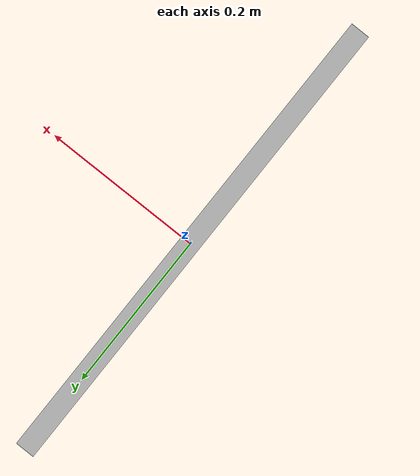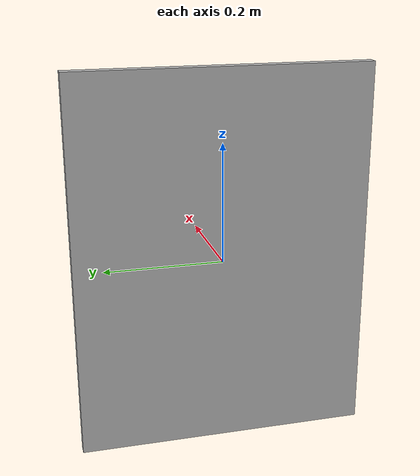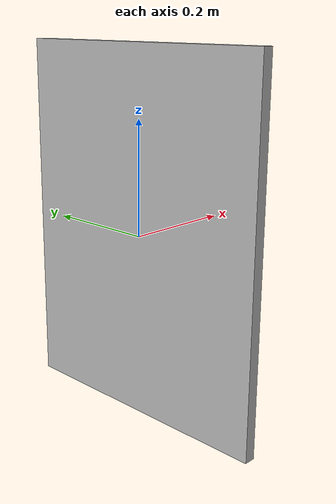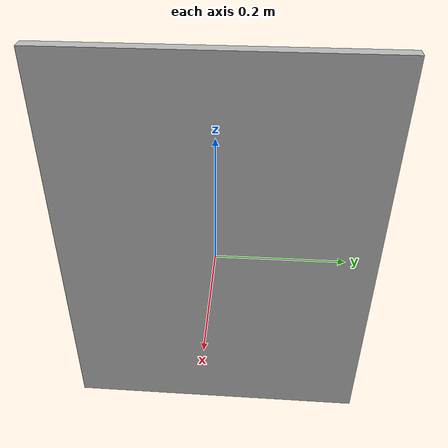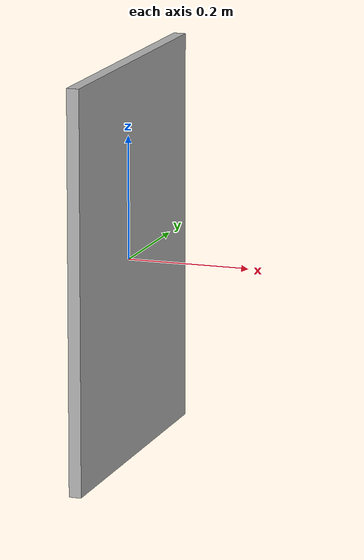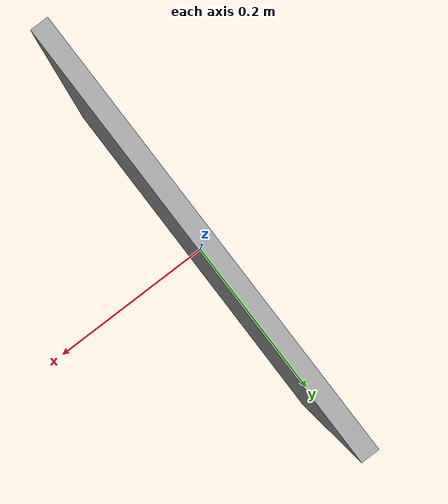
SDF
<?xml version="1.0" ?>
<sdf version='1.4'>
  <model name='pal_poster'>
      <link name="link">
      <gravity>false</gravity>
        <inertial>
          <mass>0.4</mass>
          <inertia>
            <ixx>1.0</ixx>
            <ixy>0.0</ixy>
            <ixz>0.0</ixz>
            <iyy>1.0</iyy>
            <iyz>0.0</iyz>
            <izz>1.0</izz>
          </inertia>
        </inertial>
        <collision name="collision">
          <geometry>
            <box>
              <size>0.02 0.5 0.644</size> <!-- Poster dimensions: thickness width length -->
            </box>
          </geometry>
        </collision>
        <visual name="visual">
          <geometry>
            <box>
              <size>0.02 0.5 0.644</size> <!-- Poster dimensions: thickness width length -->
            </box>
          </geometry>
          <material>
            <script>
	      <uri>model://pal_poster/material/scripts</uri>
	      <uri>model://pal_poster/material/textures</uri>
              <name>Custom/pal_poster</name>
            </script>
          </material>
        </visual>
      </link>
    </model>
</sdf>
